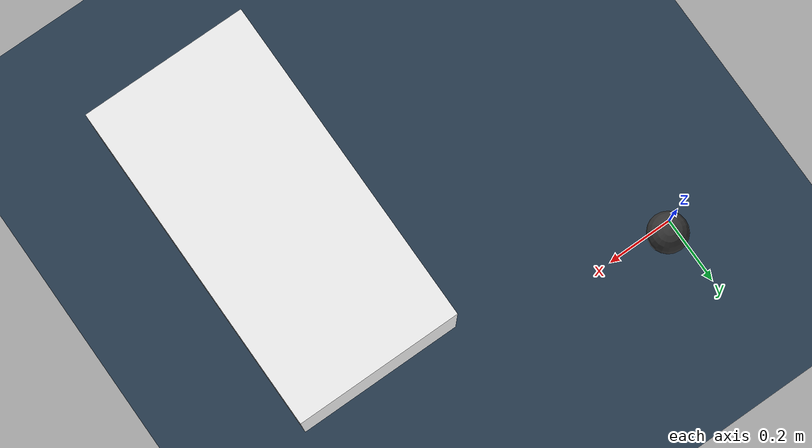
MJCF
<?xml version="1.0" encoding="utf-8"?>
<mujoco>
	<compiler angle="radian" coordinate="local" meshdir="../stls/dual_ur5_husky" texturedir="../textures"></compiler>
	<option timestep="2e-3"
			iterations="10"
			tolerance="1e-10"
			impratio="300"
			gravity="0 0 -9.81"
			solver="PGS"
			cone="elliptic" />

	<size njmax="600" nconmax="150" nstack="300000"/>

    <visual>
        <map fogstart="3" fogend="5" force="0.1" znear="0.1"/>
        <quality shadowsize="2048" offsamples="8"/>
        <global offwidth="800" offheight="800"/>
    </visual>

	<worldbody>
		<body name="floor0" pos="0.8 0.75 0">
			<site name="target0" pos="0 0 0.5" size="0.02 0.02 0.02" rgba="1 0 0 0" type="sphere"></site>
		</body>

		<geom condim="3" material="floorplane" name="floor" pos="0 0 0" size="3 3 .125" type="plane"/>

		<light directional="true" ambient="0.2 0.2 0.2" diffuse="0.8 0.8 0.8" specular="0.3 0.3 0.3" castshadow="false" pos="0 0 4" dir="0 0 -1" name="light0"></light>

		<!-- front view -->
		<camera mode="fixed" name="frontview" pos="3.0 0 1.85" quat="0.56 0.43 0.43 0.56"/>
		<!-- bird view -->
		<camera mode="fixed" name="birdview" pos="0.0 0 3.0" quat="0.7071 0 0 0.7071"/>
		<!-- agent view -->
		<camera mode="fixed" name="agentview" pos="3.0 0 1.85" quat="0.56 0.43 0.43 0.56"/>

		<!-- Robot -->

		<!-- Object -->
		<include file="objects.xml" />

		<body pos="0.9 -0.6 0.15" name="table0">
			<geom size="0.25 0.5 0.15" type="box" mass="2000" material="table_mat"></geom>
			<geom size="0.25 0.5 0.15" type="box" mass="2000" group="1" material="table_mat"></geom>
		</body>

	</worldbody>

    <actuator>
        <!-- husky base position control -->
		<!-- husky base velocity control -->
	</actuator>

    <asset>
        <texture builtin="gradient" height="256" rgb1=".9 .9 1." rgb2=".2 .3 .4" type="skybox" width="256"/>
        <texture builtin="checker" height="512" name="texplane" rgb1=".2 .3 .4" rgb2=".1 0.15 0.2" type="2d" width="512"/>
        <material name="floorplane" reflectance="0.5" texrepeat="1 1" texture="texplane" texuniform="true"/>

        <texture builtin="flat" height="1278" mark="cross" markrgb="1 1 1" name="texgeom" random="0.01" rgb1="0.8 0.6 0.4" rgb2="0.8 0.6 0.4" type="cube" width="127"/>
        <texture type="skybox" builtin="gradient" rgb1="0.44 0.85 0.56" rgb2="0.46 0.87 0.58" width="32" height="32"></texture>
        <texture name="texture_block" file="block.png" gridsize="3 4" gridlayout=".U..LFRB.D.."></texture>

        <material name="floor_mat" specular="0" shininess="0.5" reflectance="0" rgba="0.2 0.2 0.2 1"></material>
        <material name="table_mat" specular="0" shininess="0.5" reflectance="0" rgba="0.93 0.93 0.93 1"></material>
        <material name="block_mat" specular="0" shininess="0.5" reflectance="0" rgba="0.2 0.2 0.2 1"></material>
        <material name="puck_mat" specular="0" shininess="0.5" reflectance="0" rgba="0.2 0.2 0.2 1"></material>
        <material name="MatPlane" reflectance="0.5" shininess="1" specular="1" texrepeat="60 60" texture="texplane"/>
        <material name="geom" texture="texgeom" texuniform="true"/>
        <material name="robot0:geomMat" shininess="0.03" specular="0.4"></material>

        <mesh name="base_link" file="base_link.stl" />
        <mesh name="wheel" file="wheel.stl" />
        <mesh name="top_chassis" file="top_chassis.stl" />
        <mesh name="bumper" file="bumper.stl" />
        <mesh name="dual_arm_bulkhead" file="dual_arm_bulkhead.stl" />
        <mesh name="flir-ptu-simple" file="flir-ptu-simple.stl" />
        <mesh name="base" file="base.stl" />
        <mesh name="shoulder" file="shoulder.stl" />
        <mesh name="upperarm" file="upperarm.stl" />
        <mesh name="forearm" file="forearm.stl" />
        <mesh name="wrist1" file="wrist1.stl" />
        <mesh name="wrist2" file="wrist2.stl" />
        <mesh name="wrist3" file="wrist3.stl" />
        <mesh name="sick-lms1xx" file="sick-lms1xx.stl" />
        <mesh name="pointgrey_bumblebee2" file="pointgrey_bumblebee2.stl" />
        <mesh name="robotiq_fts300" file="robotiq_fts300.stl" />
        <mesh name="link_0" file="link_0.STL" />
        <mesh name="link_1" file="link_1.STL" />
        <mesh name="link_2" file="link_2.STL" />
        <mesh name="link_3" file="link_3.STL" />
        <mesh name="palm" file="palm.STL" />
        <!-- from Standford robosuite -->
        <mesh name="collision_link_0" file="collision_link_0.STL" />
        <mesh name="collision_link_1" file="collision_link_1.STL" />
        <mesh name="collision_link_2" file="collision_link_2.STL" />
        <mesh name="collision_link_3" file="collision_link_3.STL" />
        <mesh name="collision_palm" file="collision_palm.STL" />

    </asset>
    <asset>
        <mesh file="bottle.stl" name="bottle_mesh"/>
        <texture type="skybox" file="glass.png" name="tex-glass"/>
        <material name="glass" reflectance="0.5" texrepeat="5 5" texture="tex-glass" texuniform="true"/>
    </asset>
    <asset>
        <mesh file="can.stl" name="can_mesh"/>
        <texture file="can.png" name="tex-can"/>
        <material name="coke" reflectance="0.7" texrepeat="5 5" texture="tex-can" texuniform="true"/>
    </asset>
    <asset>
        <mesh file="milk.stl" name="milk_mesh" scale="0.9 0.9 0.9"/>
        <texture file="ceramic.png" name="tex-ceramic"/>
        <material name="ceramic" reflectance="0.5" texrepeat="1 1" texture="tex-ceramic" texuniform="true"/>
    </asset>
</mujoco>

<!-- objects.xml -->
<mujoco>
    <!-- cube -->

    <!-- sphere -->
    <body name="object0" pos="0.025 0.025 0.025">
        <joint name="object0:joint" type="free" damping="0.01"></joint>
        <geom size="0.06 0.06 0.06" type="sphere" condim="4" name="sphere_visual" material="block_mat" mass="2" group="1" friction="1 .001 .001" ></geom>
        <geom size="0.06 0.06 0.06" type="sphere" condim="4" name="sphere_collision" material="block_mat" mass="2" group="0" friction="1 .001 .001" ></geom>

        <site name="object0" pos="0 0 0" size="0.02 0.02 0.02" rgba="1 0 0 1" type="sphere"></site>
    </body>

    <!-- cylinder -->

    <!-- bottle -->

    <!-- can -->

    <!-- milk -->
</mujoco>
